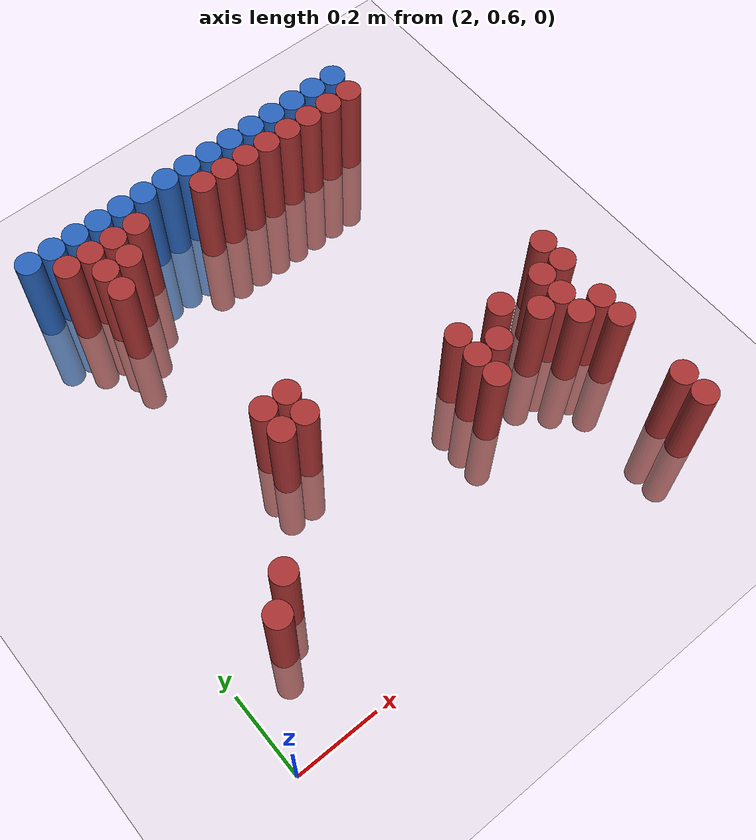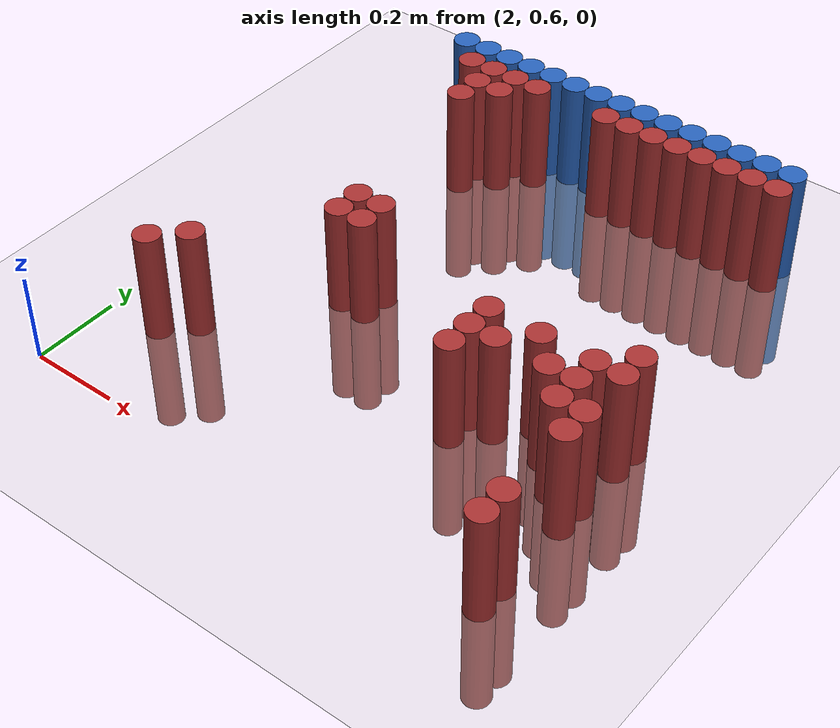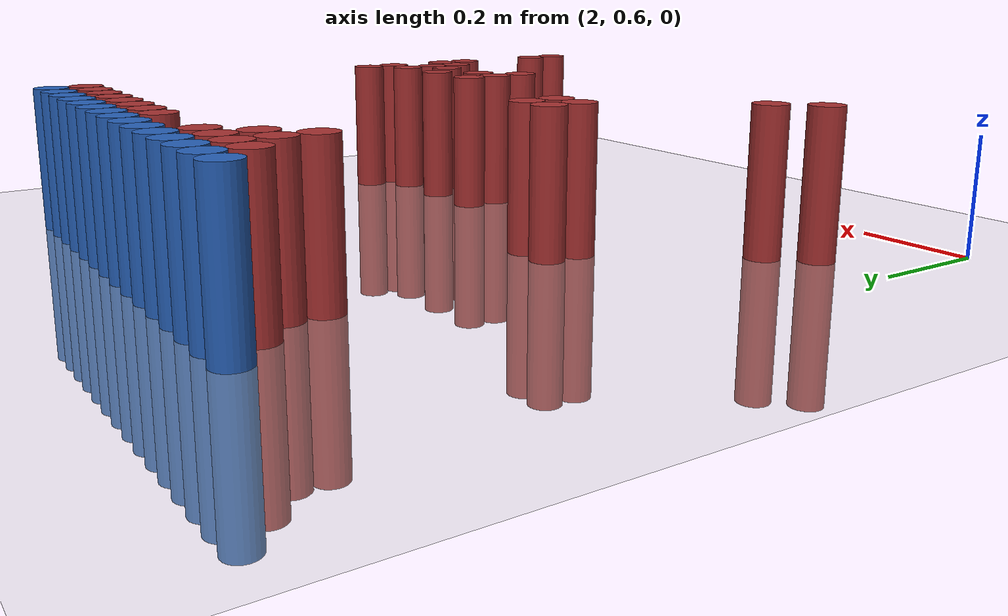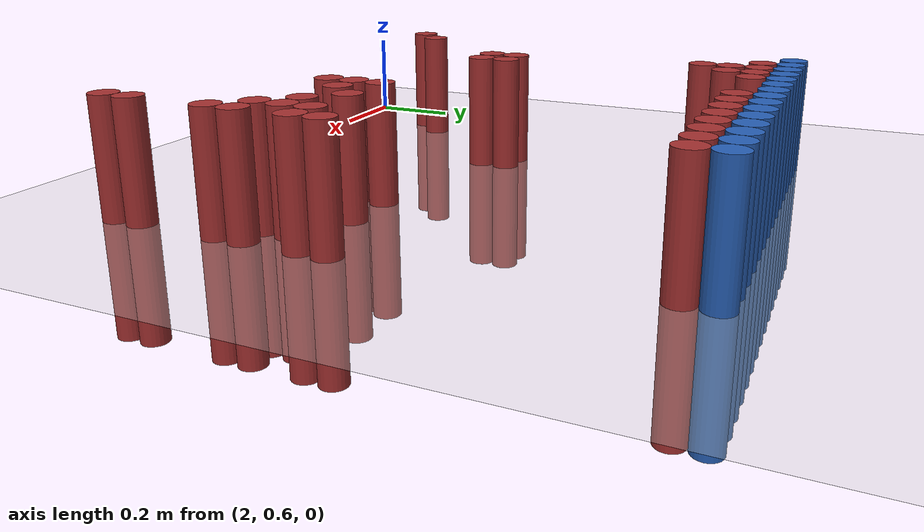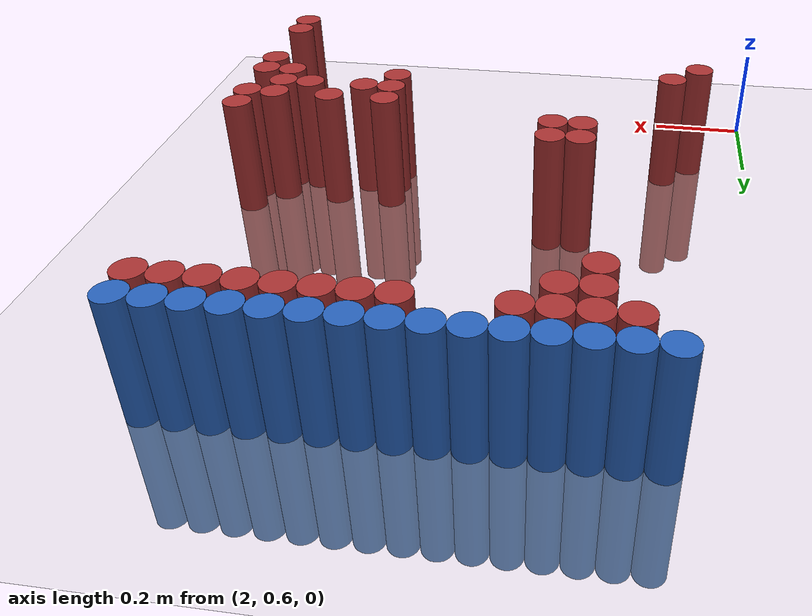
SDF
<sdf version="1.6">
 <world name="default">
  <model name="ground_plane">
   <static>1</static>
   <link name="link">
    <collision name="collision">
     <geometry><plane><normal>0 0 1</normal><size>100 100</size></plane></geometry>
     <surface><friction><ode><mu>100</mu><mu2>50</mu2></ode></friction></surface>
    </collision>
    <visual name="visual">
     <cast_shadows>0</cast_shadows>
     <geometry><plane><normal>0 0 1</normal><size>100 100</size></plane></geometry>
     <material>
      <script><uri>file://media/materials/scripts/gazebo.material</uri><name>Gazebo/Grey</name></script>
     </material>
    </visual>
   </link>
  </model>
  <model name="unit_cylinder_97">
   <static>1</static>
   <pose>2.190000 1.770000 0.000000 0.000000 0.000000 0.000000</pose>
   <link name="link">
    <inertial>
     <mass>1</mass>
     <inertia><ixx>0.145833</ixx><ixy>0</ixy><ixz>0</ixz><iyy>0.145833</iyy><iyz>0</iyz><izz>0.125</izz></inertia>
    </inertial>
    <collision name="collision">
     <geometry><cylinder><radius>0.030000</radius><length>0.5</length></cylinder></geometry>
    </collision>
    <visual name="visual">
     <geometry><cylinder><radius>0.030000</radius><length>0.5</length></cylinder></geometry>
     <material>
      <ambient>0.152000 0.379000 0.720000 1</ambient>
      <diffuse>0.152000 0.379000 0.720000 1</diffuse>
     </material>
     <material>
      <script><name>Gazebo/Grey</name><uri>file://media/materials/scripts/gazebo.material</uri></script>
     </material>
    </visual>
   </link>
  </model>
  <model name="unit_cylinder_98">
   <static>1</static>
   <pose>2.250000 1.770000 0.000000 0.000000 0.000000 0.000000</pose>
   <link name="link">
    <inertial>
     <mass>1</mass>
     <inertia><ixx>0.145833</ixx><ixy>0</ixy><ixz>0</ixz><iyy>0.145833</iyy><iyz>0</iyz><izz>0.125</izz></inertia>
    </inertial>
    <collision name="collision">
     <geometry><cylinder><radius>0.030000</radius><length>0.5</length></cylinder></geometry>
    </collision>
    <visual name="visual">
     <geometry><cylinder><radius>0.030000</radius><length>0.5</length></cylinder></geometry>
     <material>
      <ambient>0.152000 0.379000 0.720000 1</ambient>
      <diffuse>0.152000 0.379000 0.720000 1</diffuse>
     </material>
     <material>
      <script><name>Gazebo/Grey</name><uri>file://media/materials/scripts/gazebo.material</uri></script>
     </material>
    </visual>
   </link>
  </model>
  <model name="unit_cylinder_99">
   <static>1</static>
   <pose>2.310000 1.770000 0.000000 0.000000 0.000000 0.000000</pose>
   <link name="link">
    <inertial>
     <mass>1</mass>
     <inertia><ixx>0.145833</ixx><ixy>0</ixy><ixz>0</ixz><iyy>0.145833</iyy><iyz>0</iyz><izz>0.125</izz></inertia>
    </inertial>
    <collision name="collision">
     <geometry><cylinder><radius>0.030000</radius><length>0.5</length></cylinder></geometry>
    </collision>
    <visual name="visual">
     <geometry><cylinder><radius>0.030000</radius><length>0.5</length></cylinder></geometry>
     <material>
      <ambient>0.152000 0.379000 0.720000 1</ambient>
      <diffuse>0.152000 0.379000 0.720000 1</diffuse>
     </material>
     <material>
      <script><name>Gazebo/Grey</name><uri>file://media/materials/scripts/gazebo.material</uri></script>
     </material>
    </visual>
   </link>
  </model>
  <model name="unit_cylinder_100">
   <static>1</static>
   <pose>2.370000 1.770000 0.000000 0.000000 0.000000 0.000000</pose>
   <link name="link">
    <inertial>
     <mass>1</mass>
     <inertia><ixx>0.145833</ixx><ixy>0</ixy><ixz>0</ixz><iyy>0.145833</iyy><iyz>0</iyz><izz>0.125</izz></inertia>
    </inertial>
    <collision name="collision">
     <geometry><cylinder><radius>0.030000</radius><length>0.5</length></cylinder></geometry>
    </collision>
    <visual name="visual">
     <geometry><cylinder><radius>0.030000</radius><length>0.5</length></cylinder></geometry>
     <material>
      <ambient>0.152000 0.379000 0.720000 1</ambient>
      <diffuse>0.152000 0.379000 0.720000 1</diffuse>
     </material>
     <material>
      <script><name>Gazebo/Grey</name><uri>file://media/materials/scripts/gazebo.material</uri></script>
     </material>
    </visual>
   </link>
  </model>
  <model name="unit_cylinder_101">
   <static>1</static>
   <pose>2.430000 1.770000 0.000000 0.000000 0.000000 0.000000</pose>
   <link name="link">
    <inertial>
     <mass>1</mass>
     <inertia><ixx>0.145833</ixx><ixy>0</ixy><ixz>0</ixz><iyy>0.145833</iyy><iyz>0</iyz><izz>0.125</izz></inertia>
    </inertial>
    <collision name="collision">
     <geometry><cylinder><radius>0.030000</radius><length>0.5</length></cylinder></geometry>
    </collision>
    <visual name="visual">
     <geometry><cylinder><radius>0.030000</radius><length>0.5</length></cylinder></geometry>
     <material>
      <ambient>0.152000 0.379000 0.720000 1</ambient>
      <diffuse>0.152000 0.379000 0.720000 1</diffuse>
     </material>
     <material>
      <script><name>Gazebo/Grey</name><uri>file://media/materials/scripts/gazebo.material</uri></script>
     </material>
    </visual>
   </link>
  </model>
  <model name="unit_cylinder_102">
   <static>1</static>
   <pose>2.490000 1.770000 0.000000 0.000000 0.000000 0.000000</pose>
   <link name="link">
    <inertial>
     <mass>1</mass>
     <inertia><ixx>0.145833</ixx><ixy>0</ixy><ixz>0</ixz><iyy>0.145833</iyy><iyz>0</iyz><izz>0.125</izz></inertia>
    </inertial>
    <collision name="collision">
     <geometry><cylinder><radius>0.030000</radius><length>0.5</length></cylinder></geometry>
    </collision>
    <visual name="visual">
     <geometry><cylinder><radius>0.030000</radius><length>0.5</length></cylinder></geometry>
     <material>
      <ambient>0.152000 0.379000 0.720000 1</ambient>
      <diffuse>0.152000 0.379000 0.720000 1</diffuse>
     </material>
     <material>
      <script><name>Gazebo/Grey</name><uri>file://media/materials/scripts/gazebo.material</uri></script>
     </material>
    </visual>
   </link>
  </model>
  <model name="unit_cylinder_103">
   <static>1</static>
   <pose>2.550000 1.770000 0.000000 0.000000 0.000000 0.000000</pose>
   <link name="link">
    <inertial>
     <mass>1</mass>
     <inertia><ixx>0.145833</ixx><ixy>0</ixy><ixz>0</ixz><iyy>0.145833</iyy><iyz>0</iyz><izz>0.125</izz></inertia>
    </inertial>
    <collision name="collision">
     <geometry><cylinder><radius>0.030000</radius><length>0.5</length></cylinder></geometry>
    </collision>
    <visual name="visual">
     <geometry><cylinder><radius>0.030000</radius><length>0.5</length></cylinder></geometry>
     <material>
      <ambient>0.152000 0.379000 0.720000 1</ambient>
      <diffuse>0.152000 0.379000 0.720000 1</diffuse>
     </material>
     <material>
      <script><name>Gazebo/Grey</name><uri>file://media/materials/scripts/gazebo.material</uri></script>
     </material>
    </visual>
   </link>
  </model>
  <model name="unit_cylinder_104">
   <static>1</static>
   <pose>2.610000 1.770000 0.000000 0.000000 0.000000 0.000000</pose>
   <link name="link">
    <inertial>
     <mass>1</mass>
     <inertia><ixx>0.145833</ixx><ixy>0</ixy><ixz>0</ixz><iyy>0.145833</iyy><iyz>0</iyz><izz>0.125</izz></inertia>
    </inertial>
    <collision name="collision">
     <geometry><cylinder><radius>0.030000</radius><length>0.5</length></cylinder></geometry>
    </collision>
    <visual name="visual">
     <geometry><cylinder><radius>0.030000</radius><length>0.5</length></cylinder></geometry>
     <material>
      <ambient>0.152000 0.379000 0.720000 1</ambient>
      <diffuse>0.152000 0.379000 0.720000 1</diffuse>
     </material>
     <material>
      <script><name>Gazebo/Grey</name><uri>file://media/materials/scripts/gazebo.material</uri></script>
     </material>
    </visual>
   </link>
  </model>
  <model name="unit_cylinder_105">
   <static>1</static>
   <pose>2.670000 1.770000 0.000000 0.000000 0.000000 0.000000</pose>
   <link name="link">
    <inertial>
     <mass>1</mass>
     <inertia><ixx>0.145833</ixx><ixy>0</ixy><ixz>0</ixz><iyy>0.145833</iyy><iyz>0</iyz><izz>0.125</izz></inertia>
    </inertial>
    <collision name="collision">
     <geometry><cylinder><radius>0.030000</radius><length>0.5</length></cylinder></geometry>
    </collision>
    <visual name="visual">
     <geometry><cylinder><radius>0.030000</radius><length>0.5</length></cylinder></geometry>
     <material>
      <ambient>0.152000 0.379000 0.720000 1</ambient>
      <diffuse>0.152000 0.379000 0.720000 1</diffuse>
     </material>
     <material>
      <script><name>Gazebo/Grey</name><uri>file://media/materials/scripts/gazebo.material</uri></script>
     </material>
    </visual>
   </link>
  </model>
  <model name="unit_cylinder_106">
   <static>1</static>
   <pose>2.730000 1.770000 0.000000 0.000000 0.000000 0.000000</pose>
   <link name="link">
    <inertial>
     <mass>1</mass>
     <inertia><ixx>0.145833</ixx><ixy>0</ixy><ixz>0</ixz><iyy>0.145833</iyy><iyz>0</iyz><izz>0.125</izz></inertia>
    </inertial>
    <collision name="collision">
     <geometry><cylinder><radius>0.030000</radius><length>0.5</length></cylinder></geometry>
    </collision>
    <visual name="visual">
     <geometry><cylinder><radius>0.030000</radius><length>0.5</length></cylinder></geometry>
     <material>
      <ambient>0.152000 0.379000 0.720000 1</ambient>
      <diffuse>0.152000 0.379000 0.720000 1</diffuse>
     </material>
     <material>
      <script><name>Gazebo/Grey</name><uri>file://media/materials/scripts/gazebo.material</uri></script>
     </material>
    </visual>
   </link>
  </model>
  <model name="unit_cylinder_107">
   <static>1</static>
   <pose>2.790000 1.770000 0.000000 0.000000 0.000000 0.000000</pose>
   <link name="link">
    <inertial>
     <mass>1</mass>
     <inertia><ixx>0.145833</ixx><ixy>0</ixy><ixz>0</ixz><iyy>0.145833</iyy><iyz>0</iyz><izz>0.125</izz></inertia>
    </inertial>
    <collision name="collision">
     <geometry><cylinder><radius>0.030000</radius><length>0.5</length></cylinder></geometry>
    </collision>
    <visual name="visual">
     <geometry><cylinder><radius>0.030000</radius><length>0.5</length></cylinder></geometry>
     <material>
      <ambient>0.152000 0.379000 0.720000 1</ambient>
      <diffuse>0.152000 0.379000 0.720000 1</diffuse>
     </material>
     <material>
      <script><name>Gazebo/Grey</name><uri>file://media/materials/scripts/gazebo.material</uri></script>
     </material>
    </visual>
   </link>
  </model>
  <model name="unit_cylinder_108">
   <static>1</static>
   <pose>2.850000 1.770000 0.000000 0.000000 0.000000 0.000000</pose>
   <link name="link">
    <inertial>
     <mass>1</mass>
     <inertia><ixx>0.145833</ixx><ixy>0</ixy><ixz>0</ixz><iyy>0.145833</iyy><iyz>0</iyz><izz>0.125</izz></inertia>
    </inertial>
    <collision name="collision">
     <geometry><cylinder><radius>0.030000</radius><length>0.5</length></cylinder></geometry>
    </collision>
    <visual name="visual">
     <geometry><cylinder><radius>0.030000</radius><length>0.5</length></cylinder></geometry>
     <material>
      <ambient>0.152000 0.379000 0.720000 1</ambient>
      <diffuse>0.152000 0.379000 0.720000 1</diffuse>
     </material>
     <material>
      <script><name>Gazebo/Grey</name><uri>file://media/materials/scripts/gazebo.material</uri></script>
     </material>
    </visual>
   </link>
  </model>
  <model name="unit_cylinder_109">
   <static>1</static>
   <pose>2.910000 1.770000 0.000000 0.000000 0.000000 0.000000</pose>
   <link name="link">
    <inertial>
     <mass>1</mass>
     <inertia><ixx>0.145833</ixx><ixy>0</ixy><ixz>0</ixz><iyy>0.145833</iyy><iyz>0</iyz><izz>0.125</izz></inertia>
    </inertial>
    <collision name="collision">
     <geometry><cylinder><radius>0.030000</radius><length>0.5</length></cylinder></geometry>
    </collision>
    <visual name="visual">
     <geometry><cylinder><radius>0.030000</radius><length>0.5</length></cylinder></geometry>
     <material>
      <ambient>0.152000 0.379000 0.720000 1</ambient>
      <diffuse>0.152000 0.379000 0.720000 1</diffuse>
     </material>
     <material>
      <script><name>Gazebo/Grey</name><uri>file://media/materials/scripts/gazebo.material</uri></script>
     </material>
    </visual>
   </link>
  </model>
  <model name="unit_cylinder_110">
   <static>1</static>
   <pose>2.970000 1.770000 0.000000 0.000000 0.000000 0.000000</pose>
   <link name="link">
    <inertial>
     <mass>1</mass>
     <inertia><ixx>0.145833</ixx><ixy>0</ixy><ixz>0</ixz><iyy>0.145833</iyy><iyz>0</iyz><izz>0.125</izz></inertia>
    </inertial>
    <collision name="collision">
     <geometry><cylinder><radius>0.030000</radius><length>0.5</length></cylinder></geometry>
    </collision>
    <visual name="visual">
     <geometry><cylinder><radius>0.030000</radius><length>0.5</length></cylinder></geometry>
     <material>
      <ambient>0.152000 0.379000 0.720000 1</ambient>
      <diffuse>0.152000 0.379000 0.720000 1</diffuse>
     </material>
     <material>
      <script><name>Gazebo/Grey</name><uri>file://media/materials/scripts/gazebo.material</uri></script>
     </material>
    </visual>
   </link>
  </model>
  <model name="unit_cylinder_111">
   <static>1</static>
   <pose>3.030000 1.770000 0.000000 0.000000 0.000000 0.000000</pose>
   <link name="link">
    <inertial>
     <mass>1</mass>
     <inertia><ixx>0.145833</ixx><ixy>0</ixy><ixz>0</ixz><iyy>0.145833</iyy><iyz>0</iyz><izz>0.125</izz></inertia>
    </inertial>
    <collision name="collision">
     <geometry><cylinder><radius>0.030000</radius><length>0.5</length></cylinder></geometry>
    </collision>
    <visual name="visual">
     <geometry><cylinder><radius>0.030000</radius><length>0.5</length></cylinder></geometry>
     <material>
      <ambient>0.152000 0.379000 0.720000 1</ambient>
      <diffuse>0.152000 0.379000 0.720000 1</diffuse>
     </material>
     <material>
      <script><name>Gazebo/Grey</name><uri>file://media/materials/scripts/gazebo.material</uri></script>
     </material>
    </visual>
   </link>
  </model>
  <model name="unit_cylinder_125">
   <static>1</static>
   <pose>2.250000 1.710000 0.000000 0.000000 0.000000 0.000000</pose>
   <link name="link">
    <inertial>
     <mass>1</mass>
     <inertia><ixx>0.145833</ixx><ixy>0</ixy><ixz>0</ixz><iyy>0.145833</iyy><iyz>0</iyz><izz>0.125</izz></inertia>
    </inertial>
    <collision name="collision">
     <geometry><cylinder><radius>0.030000</radius><length>0.5</length></cylinder></geometry>
    </collision>
    <visual name="visual">
     <geometry><cylinder><radius>0.030000</radius><length>0.5</length></cylinder></geometry>
     <material>
      <ambient>0.648000 0.192000 0.192000 1</ambient>
      <diffuse>0.648000 0.192000 0.192000 1</diffuse>
     </material>
     <material>
      <script><name>Gazebo/Grey</name><uri>file://media/materials/scripts/gazebo.material</uri></script>
     </material>
    </visual>
   </link>
  </model>
  <model name="unit_cylinder_126">
   <static>1</static>
   <pose>2.310000 1.710000 0.000000 0.000000 0.000000 0.000000</pose>
   <link name="link">
    <inertial>
     <mass>1</mass>
     <inertia><ixx>0.145833</ixx><ixy>0</ixy><ixz>0</ixz><iyy>0.145833</iyy><iyz>0</iyz><izz>0.125</izz></inertia>
    </inertial>
    <collision name="collision">
     <geometry><cylinder><radius>0.030000</radius><length>0.5</length></cylinder></geometry>
    </collision>
    <visual name="visual">
     <geometry><cylinder><radius>0.030000</radius><length>0.5</length></cylinder></geometry>
     <material>
      <ambient>0.648000 0.192000 0.192000 1</ambient>
      <diffuse>0.648000 0.192000 0.192000 1</diffuse>
     </material>
     <material>
      <script><name>Gazebo/Grey</name><uri>file://media/materials/scripts/gazebo.material</uri></script>
     </material>
    </visual>
   </link>
  </model>
  <model name="unit_cylinder_127">
   <static>1</static>
   <pose>2.370000 1.710000 0.000000 0.000000 0.000000 0.000000</pose>
   <link name="link">
    <inertial>
     <mass>1</mass>
     <inertia><ixx>0.145833</ixx><ixy>0</ixy><ixz>0</ixz><iyy>0.145833</iyy><iyz>0</iyz><izz>0.125</izz></inertia>
    </inertial>
    <collision name="collision">
     <geometry><cylinder><radius>0.030000</radius><length>0.5</length></cylinder></geometry>
    </collision>
    <visual name="visual">
     <geometry><cylinder><radius>0.030000</radius><length>0.5</length></cylinder></geometry>
     <material>
      <ambient>0.648000 0.192000 0.192000 1</ambient>
      <diffuse>0.648000 0.192000 0.192000 1</diffuse>
     </material>
     <material>
      <script><name>Gazebo/Grey</name><uri>file://media/materials/scripts/gazebo.material</uri></script>
     </material>
    </visual>
   </link>
  </model>
  <model name="unit_cylinder_128">
   <static>1</static>
   <pose>2.430000 1.710000 0.000000 0.000000 0.000000 0.000000</pose>
   <link name="link">
    <inertial>
     <mass>1</mass>
     <inertia><ixx>0.145833</ixx><ixy>0</ixy><ixz>0</ixz><iyy>0.145833</iyy><iyz>0</iyz><izz>0.125</izz></inertia>
    </inertial>
    <collision name="collision">
     <geometry><cylinder><radius>0.030000</radius><length>0.5</length></cylinder></geometry>
    </collision>
    <visual name="visual">
     <geometry><cylinder><radius>0.030000</radius><length>0.5</length></cylinder></geometry>
     <material>
      <ambient>0.648000 0.192000 0.192000 1</ambient>
      <diffuse>0.648000 0.192000 0.192000 1</diffuse>
     </material>
     <material>
      <script><name>Gazebo/Grey</name><uri>file://media/materials/scripts/gazebo.material</uri></script>
     </material>
    </visual>
   </link>
  </model>
  <model name="unit_cylinder_129">
   <static>1</static>
   <pose>2.610000 1.710000 0.000000 0.000000 0.000000 0.000000</pose>
   <link name="link">
    <inertial>
     <mass>1</mass>
     <inertia><ixx>0.145833</ixx><ixy>0</ixy><ixz>0</ixz><iyy>0.145833</iyy><iyz>0</iyz><izz>0.125</izz></inertia>
    </inertial>
    <collision name="collision">
     <geometry><cylinder><radius>0.030000</radius><length>0.5</length></cylinder></geometry>
    </collision>
    <visual name="visual">
     <geometry><cylinder><radius>0.030000</radius><length>0.5</length></cylinder></geometry>
     <material>
      <ambient>0.648000 0.192000 0.192000 1</ambient>
      <diffuse>0.648000 0.192000 0.192000 1</diffuse>
     </material>
     <material>
      <script><name>Gazebo/Grey</name><uri>file://media/materials/scripts/gazebo.material</uri></script>
     </material>
    </visual>
   </link>
  </model>
  <model name="unit_cylinder_130">
   <static>1</static>
   <pose>2.670000 1.710000 0.000000 0.000000 0.000000 0.000000</pose>
   <link name="link">
    <inertial>
     <mass>1</mass>
     <inertia><ixx>0.145833</ixx><ixy>0</ixy><ixz>0</ixz><iyy>0.145833</iyy><iyz>0</iyz><izz>0.125</izz></inertia>
    </inertial>
    <collision name="collision">
     <geometry><cylinder><radius>0.030000</radius><length>0.5</length></cylinder></geometry>
    </collision>
    <visual name="visual">
     <geometry><cylinder><radius>0.030000</radius><length>0.5</length></cylinder></geometry>
     <material>
      <ambient>0.648000 0.192000 0.192000 1</ambient>
      <diffuse>0.648000 0.192000 0.192000 1</diffuse>
     </material>
     <material>
      <script><name>Gazebo/Grey</name><uri>file://media/materials/scripts/gazebo.material</uri></script>
     </material>
    </visual>
   </link>
  </model>
  <model name="unit_cylinder_131">
   <static>1</static>
   <pose>2.730000 1.710000 0.000000 0.000000 0.000000 0.000000</pose>
   <link name="link">
    <inertial>
     <mass>1</mass>
     <inertia><ixx>0.145833</ixx><ixy>0</ixy><ixz>0</ixz><iyy>0.145833</iyy><iyz>0</iyz><izz>0.125</izz></inertia>
    </inertial>
    <collision name="collision">
     <geometry><cylinder><radius>0.030000</radius><length>0.5</length></cylinder></geometry>
    </collision>
    <visual name="visual">
     <geometry><cylinder><radius>0.030000</radius><length>0.5</length></cylinder></geometry>
     <material>
      <ambient>0.648000 0.192000 0.192000 1</ambient>
      <diffuse>0.648000 0.192000 0.192000 1</diffuse>
     </material>
     <material>
      <script><name>Gazebo/Grey</name><uri>file://media/materials/scripts/gazebo.material</uri></script>
     </material>
    </visual>
   </link>
  </model>
  <model name="unit_cylinder_132">
   <static>1</static>
   <pose>2.790000 1.710000 0.000000 0.000000 0.000000 0.000000</pose>
   <link name="link">
    <inertial>
     <mass>1</mass>
     <inertia><ixx>0.145833</ixx><ixy>0</ixy><ixz>0</ixz><iyy>0.145833</iyy><iyz>0</iyz><izz>0.125</izz></inertia>
    </inertial>
    <collision name="collision">
     <geometry><cylinder><radius>0.030000</radius><length>0.5</length></cylinder></geometry>
    </collision>
    <visual name="visual">
     <geometry><cylinder><radius>0.030000</radius><length>0.5</length></cylinder></geometry>
     <material>
      <ambient>0.648000 0.192000 0.192000 1</ambient>
      <diffuse>0.648000 0.192000 0.192000 1</diffuse>
     </material>
     <material>
      <script><name>Gazebo/Grey</name><uri>file://media/materials/scripts/gazebo.material</uri></script>
     </material>
    </visual>
   </link>
  </model>
  <model name="unit_cylinder_133">
   <static>1</static>
   <pose>2.850000 1.710000 0.000000 0.000000 0.000000 0.000000</pose>
   <link name="link">
    <inertial>
     <mass>1</mass>
     <inertia><ixx>0.145833</ixx><ixy>0</ixy><ixz>0</ixz><iyy>0.145833</iyy><iyz>0</iyz><izz>0.125</izz></inertia>
    </inertial>
    <collision name="collision">
     <geometry><cylinder><radius>0.030000</radius><length>0.5</length></cylinder></geometry>
    </collision>
    <visual name="visual">
     <geometry><cylinder><radius>0.030000</radius><length>0.5</length></cylinder></geometry>
     <material>
      <ambient>0.648000 0.192000 0.192000 1</ambient>
      <diffuse>0.648000 0.192000 0.192000 1</diffuse>
     </material>
     <material>
      <script><name>Gazebo/Grey</name><uri>file://media/materials/scripts/gazebo.material</uri></script>
     </material>
    </visual>
   </link>
  </model>
  <model name="unit_cylinder_134">
   <static>1</static>
   <pose>2.910000 1.710000 0.000000 0.000000 0.000000 0.000000</pose>
   <link name="link">
    <inertial>
     <mass>1</mass>
     <inertia><ixx>0.145833</ixx><ixy>0</ixy><ixz>0</ixz><iyy>0.145833</iyy><iyz>0</iyz><izz>0.125</izz></inertia>
    </inertial>
    <collision name="collision">
     <geometry><cylinder><radius>0.030000</radius><length>0.5</length></cylinder></geometry>
    </collision>
    <visual name="visual">
     <geometry><cylinder><radius>0.030000</radius><length>0.5</length></cylinder></geometry>
     <material>
      <ambient>0.648000 0.192000 0.192000 1</ambient>
      <diffuse>0.648000 0.192000 0.192000 1</diffuse>
     </material>
     <material>
      <script><name>Gazebo/Grey</name><uri>file://media/materials/scripts/gazebo.material</uri></script>
     </material>
    </visual>
   </link>
  </model>
  <model name="unit_cylinder_135">
   <static>1</static>
   <pose>2.970000 1.710000 0.000000 0.000000 0.000000 0.000000</pose>
   <link name="link">
    <inertial>
     <mass>1</mass>
     <inertia><ixx>0.145833</ixx><ixy>0</ixy><ixz>0</ixz><iyy>0.145833</iyy><iyz>0</iyz><izz>0.125</izz></inertia>
    </inertial>
    <collision name="collision">
     <geometry><cylinder><radius>0.030000</radius><length>0.5</length></cylinder></geometry>
    </collision>
    <visual name="visual">
     <geometry><cylinder><radius>0.030000</radius><length>0.5</length></cylinder></geometry>
     <material>
      <ambient>0.648000 0.192000 0.192000 1</ambient>
      <diffuse>0.648000 0.192000 0.192000 1</diffuse>
     </material>
     <material>
      <script><name>Gazebo/Grey</name><uri>file://media/materials/scripts/gazebo.material</uri></script>
     </material>
    </visual>
   </link>
  </model>
  <model name="unit_cylinder_136">
   <static>1</static>
   <pose>3.030000 1.710000 0.000000 0.000000 0.000000 0.000000</pose>
   <link name="link">
    <inertial>
     <mass>1</mass>
     <inertia><ixx>0.145833</ixx><ixy>0</ixy><ixz>0</ixz><iyy>0.145833</iyy><iyz>0</iyz><izz>0.125</izz></inertia>
    </inertial>
    <collision name="collision">
     <geometry><cylinder><radius>0.030000</radius><length>0.5</length></cylinder></geometry>
    </collision>
    <visual name="visual">
     <geometry><cylinder><radius>0.030000</radius><length>0.5</length></cylinder></geometry>
     <material>
      <ambient>0.648000 0.192000 0.192000 1</ambient>
      <diffuse>0.648000 0.192000 0.192000 1</diffuse>
     </material>
     <material>
      <script><name>Gazebo/Grey</name><uri>file://media/materials/scripts/gazebo.material</uri></script>
     </material>
    </visual>
   </link>
  </model>
  <model name="unit_cylinder_140">
   <static>1</static>
   <pose>2.310000 1.650000 0.000000 0.000000 0.000000 0.000000</pose>
   <link name="link">
    <inertial>
     <mass>1</mass>
     <inertia><ixx>0.145833</ixx><ixy>0</ixy><ixz>0</ixz><iyy>0.145833</iyy><iyz>0</iyz><izz>0.125</izz></inertia>
    </inertial>
    <collision name="collision">
     <geometry><cylinder><radius>0.030000</radius><length>0.5</length></cylinder></geometry>
    </collision>
    <visual name="visual">
     <geometry><cylinder><radius>0.030000</radius><length>0.5</length></cylinder></geometry>
     <material>
      <ambient>0.648000 0.192000 0.192000 1</ambient>
      <diffuse>0.648000 0.192000 0.192000 1</diffuse>
     </material>
     <material>
      <script><name>Gazebo/Grey</name><uri>file://media/materials/scripts/gazebo.material</uri></script>
     </material>
    </visual>
   </link>
  </model>
  <model name="unit_cylinder_141">
   <static>1</static>
   <pose>2.370000 1.650000 0.000000 0.000000 0.000000 0.000000</pose>
   <link name="link">
    <inertial>
     <mass>1</mass>
     <inertia><ixx>0.145833</ixx><ixy>0</ixy><ixz>0</ixz><iyy>0.145833</iyy><iyz>0</iyz><izz>0.125</izz></inertia>
    </inertial>
    <collision name="collision">
     <geometry><cylinder><radius>0.030000</radius><length>0.5</length></cylinder></geometry>
    </collision>
    <visual name="visual">
     <geometry><cylinder><radius>0.030000</radius><length>0.5</length></cylinder></geometry>
     <material>
      <ambient>0.648000 0.192000 0.192000 1</ambient>
      <diffuse>0.648000 0.192000 0.192000 1</diffuse>
     </material>
     <material>
      <script><name>Gazebo/Grey</name><uri>file://media/materials/scripts/gazebo.material</uri></script>
     </material>
    </visual>
   </link>
  </model>
  <model name="unit_cylinder_142">
   <static>1</static>
   <pose>2.310000 1.590000 0.000000 0.000000 0.000000 0.000000</pose>
   <link name="link">
    <inertial>
     <mass>1</mass>
     <inertia><ixx>0.145833</ixx><ixy>0</ixy><ixz>0</ixz><iyy>0.145833</iyy><iyz>0</iyz><izz>0.125</izz></inertia>
    </inertial>
    <collision name="collision">
     <geometry><cylinder><radius>0.030000</radius><length>0.5</length></cylinder></geometry>
    </collision>
    <visual name="visual">
     <geometry><cylinder><radius>0.030000</radius><length>0.5</length></cylinder></geometry>
     <material>
      <ambient>0.648000 0.192000 0.192000 1</ambient>
      <diffuse>0.648000 0.192000 0.192000 1</diffuse>
     </material>
     <material>
      <script><name>Gazebo/Grey</name><uri>file://media/materials/scripts/gazebo.material</uri></script>
     </material>
    </visual>
   </link>
  </model>
  <model name="unit_cylinder_155">
   <static>1</static>
   <pose>2.370000 1.170000 0.000000 0.000000 0.000000 0.000000</pose>
   <link name="link">
    <inertial>
     <mass>1</mass>
     <inertia><ixx>0.145833</ixx><ixy>0</ixy><ixz>0</ixz><iyy>0.145833</iyy><iyz>0</iyz><izz>0.125</izz></inertia>
    </inertial>
    <collision name="collision">
     <geometry><cylinder><radius>0.030000</radius><length>0.5</length></cylinder></geometry>
    </collision>
    <visual name="visual">
     <geometry><cylinder><radius>0.030000</radius><length>0.5</length></cylinder></geometry>
     <material>
      <ambient>0.648000 0.192000 0.192000 1</ambient>
      <diffuse>0.648000 0.192000 0.192000 1</diffuse>
     </material>
     <material>
      <script><name>Gazebo/Grey</name><uri>file://media/materials/scripts/gazebo.material</uri></script>
     </material>
    </visual>
   </link>
  </model>
  <model name="unit_cylinder_156">
   <static>1</static>
   <pose>2.430000 1.170000 0.000000 0.000000 0.000000 0.000000</pose>
   <link name="link">
    <inertial>
     <mass>1</mass>
     <inertia><ixx>0.145833</ixx><ixy>0</ixy><ixz>0</ixz><iyy>0.145833</iyy><iyz>0</iyz><izz>0.125</izz></inertia>
    </inertial>
    <collision name="collision">
     <geometry><cylinder><radius>0.030000</radius><length>0.5</length></cylinder></geometry>
    </collision>
    <visual name="visual">
     <geometry><cylinder><radius>0.030000</radius><length>0.5</length></cylinder></geometry>
     <material>
      <ambient>0.648000 0.192000 0.192000 1</ambient>
      <diffuse>0.648000 0.192000 0.192000 1</diffuse>
     </material>
     <material>
      <script><name>Gazebo/Grey</name><uri>file://media/materials/scripts/gazebo.material</uri></script>
     </material>
    </visual>
   </link>
  </model>
  <model name="unit_cylinder_157">
   <static>1</static>
   <pose>2.370000 1.110000 0.000000 0.000000 0.000000 0.000000</pose>
   <link name="link">
    <inertial>
     <mass>1</mass>
     <inertia><ixx>0.145833</ixx><ixy>0</ixy><ixz>0</ixz><iyy>0.145833</iyy><iyz>0</iyz><izz>0.125</izz></inertia>
    </inertial>
    <collision name="collision">
     <geometry><cylinder><radius>0.030000</radius><length>0.5</length></cylinder></geometry>
    </collision>
    <visual name="visual">
     <geometry><cylinder><radius>0.030000</radius><length>0.5</length></cylinder></geometry>
     <material>
      <ambient>0.648000 0.192000 0.192000 1</ambient>
      <diffuse>0.648000 0.192000 0.192000 1</diffuse>
     </material>
     <material>
      <script><name>Gazebo/Grey</name><uri>file://media/materials/scripts/gazebo.material</uri></script>
     </material>
    </visual>
   </link>
  </model>
  <model name="unit_cylinder_158">
   <static>1</static>
   <pose>2.430000 1.110000 0.000000 0.000000 0.000000 0.000000</pose>
   <link name="link">
    <inertial>
     <mass>1</mass>
     <inertia><ixx>0.145833</ixx><ixy>0</ixy><ixz>0</ixz><iyy>0.145833</iyy><iyz>0</iyz><izz>0.125</izz></inertia>
    </inertial>
    <collision name="collision">
     <geometry><cylinder><radius>0.030000</radius><length>0.5</length></cylinder></geometry>
    </collision>
    <visual name="visual">
     <geometry><cylinder><radius>0.030000</radius><length>0.5</length></cylinder></geometry>
     <material>
      <ambient>0.648000 0.192000 0.192000 1</ambient>
      <diffuse>0.648000 0.192000 0.192000 1</diffuse>
     </material>
     <material>
      <script><name>Gazebo/Grey</name><uri>file://media/materials/scripts/gazebo.material</uri></script>
     </material>
    </visual>
   </link>
  </model>
  <model name="unit_cylinder_159">
   <static>1</static>
   <pose>3.090000 1.110000 0.000000 0.000000 0.000000 0.000000</pose>
   <link name="link">
    <inertial>
     <mass>1</mass>
     <inertia><ixx>0.145833</ixx><ixy>0</ixy><ixz>0</ixz><iyy>0.145833</iyy><iyz>0</iyz><izz>0.125</izz></inertia>
    </inertial>
    <collision name="collision">
     <geometry><cylinder><radius>0.030000</radius><length>0.5</length></cylinder></geometry>
    </collision>
    <visual name="visual">
     <geometry><cylinder><radius>0.030000</radius><length>0.5</length></cylinder></geometry>
     <material>
      <ambient>0.648000 0.192000 0.192000 1</ambient>
      <diffuse>0.648000 0.192000 0.192000 1</diffuse>
     </material>
     <material>
      <script><name>Gazebo/Grey</name><uri>file://media/materials/scripts/gazebo.material</uri></script>
     </material>
    </visual>
   </link>
  </model>
  <model name="unit_cylinder_160">
   <static>1</static>
   <pose>2.790000 1.050000 0.000000 0.000000 0.000000 0.000000</pose>
   <link name="link">
    <inertial>
     <mass>1</mass>
     <inertia><ixx>0.145833</ixx><ixy>0</ixy><ixz>0</ixz><iyy>0.145833</iyy><iyz>0</iyz><izz>0.125</izz></inertia>
    </inertial>
    <collision name="collision">
     <geometry><cylinder><radius>0.030000</radius><length>0.5</length></cylinder></geometry>
    </collision>
    <visual name="visual">
     <geometry><cylinder><radius>0.030000</radius><length>0.5</length></cylinder></geometry>
     <material>
      <ambient>0.648000 0.192000 0.192000 1</ambient>
      <diffuse>0.648000 0.192000 0.192000 1</diffuse>
     </material>
     <material>
      <script><name>Gazebo/Grey</name><uri>file://media/materials/scripts/gazebo.material</uri></script>
     </material>
    </visual>
   </link>
  </model>
  <model name="unit_cylinder_161">
   <static>1</static>
   <pose>2.910000 1.050000 0.000000 0.000000 0.000000 0.000000</pose>
   <link name="link">
    <inertial>
     <mass>1</mass>
     <inertia><ixx>0.145833</ixx><ixy>0</ixy><ixz>0</ixz><iyy>0.145833</iyy><iyz>0</iyz><izz>0.125</izz></inertia>
    </inertial>
    <collision name="collision">
     <geometry><cylinder><radius>0.030000</radius><length>0.5</length></cylinder></geometry>
    </collision>
    <visual name="visual">
     <geometry><cylinder><radius>0.030000</radius><length>0.5</length></cylinder></geometry>
     <material>
      <ambient>0.648000 0.192000 0.192000 1</ambient>
      <diffuse>0.648000 0.192000 0.192000 1</diffuse>
     </material>
     <material>
      <script><name>Gazebo/Grey</name><uri>file://media/materials/scripts/gazebo.material</uri></script>
     </material>
    </visual>
   </link>
  </model>
  <model name="unit_cylinder_162">
   <static>1</static>
   <pose>3.030000 1.050000 0.000000 0.000000 0.000000 0.000000</pose>
   <link name="link">
    <inertial>
     <mass>1</mass>
     <inertia><ixx>0.145833</ixx><ixy>0</ixy><ixz>0</ixz><iyy>0.145833</iyy><iyz>0</iyz><izz>0.125</izz></inertia>
    </inertial>
    <collision name="collision">
     <geometry><cylinder><radius>0.030000</radius><length>0.5</length></cylinder></geometry>
    </collision>
    <visual name="visual">
     <geometry><cylinder><radius>0.030000</radius><length>0.5</length></cylinder></geometry>
     <material>
      <ambient>0.648000 0.192000 0.192000 1</ambient>
      <diffuse>0.648000 0.192000 0.192000 1</diffuse>
     </material>
     <material>
      <script><name>Gazebo/Grey</name><uri>file://media/materials/scripts/gazebo.material</uri></script>
     </material>
    </visual>
   </link>
  </model>
  <model name="unit_cylinder_163">
   <static>1</static>
   <pose>3.090000 1.050000 0.000000 0.000000 0.000000 0.000000</pose>
   <link name="link">
    <inertial>
     <mass>1</mass>
     <inertia><ixx>0.145833</ixx><ixy>0</ixy><ixz>0</ixz><iyy>0.145833</iyy><iyz>0</iyz><izz>0.125</izz></inertia>
    </inertial>
    <collision name="collision">
     <geometry><cylinder><radius>0.030000</radius><length>0.5</length></cylinder></geometry>
    </collision>
    <visual name="visual">
     <geometry><cylinder><radius>0.030000</radius><length>0.5</length></cylinder></geometry>
     <material>
      <ambient>0.648000 0.192000 0.192000 1</ambient>
      <diffuse>0.648000 0.192000 0.192000 1</diffuse>
     </material>
     <material>
      <script><name>Gazebo/Grey</name><uri>file://media/materials/scripts/gazebo.material</uri></script>
     </material>
    </visual>
   </link>
  </model>
  <model name="unit_cylinder_165">
   <static>1</static>
   <pose>2.790000 0.990000 0.000000 0.000000 0.000000 0.000000</pose>
   <link name="link">
    <inertial>
     <mass>1</mass>
     <inertia><ixx>0.145833</ixx><ixy>0</ixy><ixz>0</ixz><iyy>0.145833</iyy><iyz>0</iyz><izz>0.125</izz></inertia>
    </inertial>
    <collision name="collision">
     <geometry><cylinder><radius>0.030000</radius><length>0.5</length></cylinder></geometry>
    </collision>
    <visual name="visual">
     <geometry><cylinder><radius>0.030000</radius><length>0.5</length></cylinder></geometry>
     <material>
      <ambient>0.648000 0.192000 0.192000 1</ambient>
      <diffuse>0.648000 0.192000 0.192000 1</diffuse>
     </material>
     <material>
      <script><name>Gazebo/Grey</name><uri>file://media/materials/scripts/gazebo.material</uri></script>
     </material>
    </visual>
   </link>
  </model>
  <model name="unit_cylinder_166">
   <static>1</static>
   <pose>2.850000 0.990000 0.000000 0.000000 0.000000 0.000000</pose>
   <link name="link">
    <inertial>
     <mass>1</mass>
     <inertia><ixx>0.145833</ixx><ixy>0</ixy><ixz>0</ixz><iyy>0.145833</iyy><iyz>0</iyz><izz>0.125</izz></inertia>
    </inertial>
    <collision name="collision">
     <geometry><cylinder><radius>0.030000</radius><length>0.5</length></cylinder></geometry>
    </collision>
    <visual name="visual">
     <geometry><cylinder><radius>0.030000</radius><length>0.5</length></cylinder></geometry>
     <material>
      <ambient>0.648000 0.192000 0.192000 1</ambient>
      <diffuse>0.648000 0.192000 0.192000 1</diffuse>
     </material>
     <material>
      <script><name>Gazebo/Grey</name><uri>file://media/materials/scripts/gazebo.material</uri></script>
     </material>
    </visual>
   </link>
  </model>
  <model name="unit_cylinder_167">
   <static>1</static>
   <pose>2.970000 0.990000 0.000000 0.000000 0.000000 0.000000</pose>
   <link name="link">
    <inertial>
     <mass>1</mass>
     <inertia><ixx>0.145833</ixx><ixy>0</ixy><ixz>0</ixz><iyy>0.145833</iyy><iyz>0</iyz><izz>0.125</izz></inertia>
    </inertial>
    <collision name="collision">
     <geometry><cylinder><radius>0.030000</radius><length>0.5</length></cylinder></geometry>
    </collision>
    <visual name="visual">
     <geometry><cylinder><radius>0.030000</radius><length>0.5</length></cylinder></geometry>
     <material>
      <ambient>0.648000 0.192000 0.192000 1</ambient>
      <diffuse>0.648000 0.192000 0.192000 1</diffuse>
     </material>
     <material>
      <script><name>Gazebo/Grey</name><uri>file://media/materials/scripts/gazebo.material</uri></script>
     </material>
    </visual>
   </link>
  </model>
  <model name="unit_cylinder_168">
   <static>1</static>
   <pose>3.030000 0.990000 0.000000 0.000000 0.000000 0.000000</pose>
   <link name="link">
    <inertial>
     <mass>1</mass>
     <inertia><ixx>0.145833</ixx><ixy>0</ixy><ixz>0</ixz><iyy>0.145833</iyy><iyz>0</iyz><izz>0.125</izz></inertia>
    </inertial>
    <collision name="collision">
     <geometry><cylinder><radius>0.030000</radius><length>0.5</length></cylinder></geometry>
    </collision>
    <visual name="visual">
     <geometry><cylinder><radius>0.030000</radius><length>0.5</length></cylinder></geometry>
     <material>
      <ambient>0.648000 0.192000 0.192000 1</ambient>
      <diffuse>0.648000 0.192000 0.192000 1</diffuse>
     </material>
     <material>
      <script><name>Gazebo/Grey</name><uri>file://media/materials/scripts/gazebo.material</uri></script>
     </material>
    </visual>
   </link>
  </model>
  <model name="unit_cylinder_174">
   <static>1</static>
   <pose>2.790000 0.930000 0.000000 0.000000 0.000000 0.000000</pose>
   <link name="link">
    <inertial>
     <mass>1</mass>
     <inertia><ixx>0.145833</ixx><ixy>0</ixy><ixz>0</ixz><iyy>0.145833</iyy><iyz>0</iyz><izz>0.125</izz></inertia>
    </inertial>
    <collision name="collision">
     <geometry><cylinder><radius>0.030000</radius><length>0.5</length></cylinder></geometry>
    </collision>
    <visual name="visual">
     <geometry><cylinder><radius>0.030000</radius><length>0.5</length></cylinder></geometry>
     <material>
      <ambient>0.648000 0.192000 0.192000 1</ambient>
      <diffuse>0.648000 0.192000 0.192000 1</diffuse>
     </material>
     <material>
      <script><name>Gazebo/Grey</name><uri>file://media/materials/scripts/gazebo.material</uri></script>
     </material>
    </visual>
   </link>
  </model>
  <model name="unit_cylinder_175">
   <static>1</static>
   <pose>3.030000 0.930000 0.000000 0.000000 0.000000 0.000000</pose>
   <link name="link">
    <inertial>
     <mass>1</mass>
     <inertia><ixx>0.145833</ixx><ixy>0</ixy><ixz>0</ixz><iyy>0.145833</iyy><iyz>0</iyz><izz>0.125</izz></inertia>
    </inertial>
    <collision name="collision">
     <geometry><cylinder><radius>0.030000</radius><length>0.5</length></cylinder></geometry>
    </collision>
    <visual name="visual">
     <geometry><cylinder><radius>0.030000</radius><length>0.5</length></cylinder></geometry>
     <material>
      <ambient>0.648000 0.192000 0.192000 1</ambient>
      <diffuse>0.648000 0.192000 0.192000 1</diffuse>
     </material>
     <material>
      <script><name>Gazebo/Grey</name><uri>file://media/materials/scripts/gazebo.material</uri></script>
     </material>
    </visual>
   </link>
  </model>
  <model name="unit_cylinder_176">
   <static>1</static>
   <pose>3.090000 0.930000 0.000000 0.000000 0.000000 0.000000</pose>
   <link name="link">
    <inertial>
     <mass>1</mass>
     <inertia><ixx>0.145833</ixx><ixy>0</ixy><ixz>0</ixz><iyy>0.145833</iyy><iyz>0</iyz><izz>0.125</izz></inertia>
    </inertial>
    <collision name="collision">
     <geometry><cylinder><radius>0.030000</radius><length>0.5</length></cylinder></geometry>
    </collision>
    <visual name="visual">
     <geometry><cylinder><radius>0.030000</radius><length>0.5</length></cylinder></geometry>
     <material>
      <ambient>0.648000 0.192000 0.192000 1</ambient>
      <diffuse>0.648000 0.192000 0.192000 1</diffuse>
     </material>
     <material>
      <script><name>Gazebo/Grey</name><uri>file://media/materials/scripts/gazebo.material</uri></script>
     </material>
    </visual>
   </link>
  </model>
  <model name="unit_cylinder_185">
   <static>1</static>
   <pose>2.190000 0.870000 0.000000 0.000000 0.000000 0.000000</pose>
   <link name="link">
    <inertial>
     <mass>1</mass>
     <inertia><ixx>0.145833</ixx><ixy>0</ixy><ixz>0</ixz><iyy>0.145833</iyy><iyz>0</iyz><izz>0.125</izz></inertia>
    </inertial>
    <collision name="collision">
     <geometry><cylinder><radius>0.030000</radius><length>0.5</length></cylinder></geometry>
    </collision>
    <visual name="visual">
     <geometry><cylinder><radius>0.030000</radius><length>0.5</length></cylinder></geometry>
     <material>
      <ambient>0.648000 0.192000 0.192000 1</ambient>
      <diffuse>0.648000 0.192000 0.192000 1</diffuse>
     </material>
     <material>
      <script><name>Gazebo/Grey</name><uri>file://media/materials/scripts/gazebo.material</uri></script>
     </material>
    </visual>
   </link>
  </model>
  <model name="unit_cylinder_186">
   <static>1</static>
   <pose>3.090000 0.870000 0.000000 0.000000 0.000000 0.000000</pose>
   <link name="link">
    <inertial>
     <mass>1</mass>
     <inertia><ixx>0.145833</ixx><ixy>0</ixy><ixz>0</ixz><iyy>0.145833</iyy><iyz>0</iyz><izz>0.125</izz></inertia>
    </inertial>
    <collision name="collision">
     <geometry><cylinder><radius>0.030000</radius><length>0.5</length></cylinder></geometry>
    </collision>
    <visual name="visual">
     <geometry><cylinder><radius>0.030000</radius><length>0.5</length></cylinder></geometry>
     <material>
      <ambient>0.648000 0.192000 0.192000 1</ambient>
      <diffuse>0.648000 0.192000 0.192000 1</diffuse>
     </material>
     <material>
      <script><name>Gazebo/Grey</name><uri>file://media/materials/scripts/gazebo.material</uri></script>
     </material>
    </visual>
   </link>
  </model>
  <model name="unit_cylinder_192">
   <static>1</static>
   <pose>2.130000 0.810000 0.000000 0.000000 0.000000 0.000000</pose>
   <link name="link">
    <inertial>
     <mass>1</mass>
     <inertia><ixx>0.145833</ixx><ixy>0</ixy><ixz>0</ixz><iyy>0.145833</iyy><iyz>0</iyz><izz>0.125</izz></inertia>
    </inertial>
    <collision name="collision">
     <geometry><cylinder><radius>0.030000</radius><length>0.5</length></cylinder></geometry>
    </collision>
    <visual name="visual">
     <geometry><cylinder><radius>0.030000</radius><length>0.5</length></cylinder></geometry>
     <material>
      <ambient>0.648000 0.192000 0.192000 1</ambient>
      <diffuse>0.648000 0.192000 0.192000 1</diffuse>
     </material>
     <material>
      <script><name>Gazebo/Grey</name><uri>file://media/materials/scripts/gazebo.material</uri></script>
     </material>
    </visual>
   </link>
  </model>
  <model name="unit_cylinder_197">
   <static>1</static>
   <pose>3.090000 0.690000 0.000000 0.000000 0.000000 0.000000</pose>
   <link name="link">
    <inertial>
     <mass>1</mass>
     <inertia><ixx>0.145833</ixx><ixy>0</ixy><ixz>0</ixz><iyy>0.145833</iyy><iyz>0</iyz><izz>0.125</izz></inertia>
    </inertial>
    <collision name="collision">
     <geometry><cylinder><radius>0.030000</radius><length>0.5</length></cylinder></geometry>
    </collision>
    <visual name="visual">
     <geometry><cylinder><radius>0.030000</radius><length>0.5</length></cylinder></geometry>
     <material>
      <ambient>0.648000 0.192000 0.192000 1</ambient>
      <diffuse>0.648000 0.192000 0.192000 1</diffuse>
     </material>
     <material>
      <script><name>Gazebo/Grey</name><uri>file://media/materials/scripts/gazebo.material</uri></script>
     </material>
    </visual>
   </link>
  </model>
  <model name="unit_cylinder_198">
   <static>1</static>
   <pose>3.090000 0.630000 0.000000 0.000000 0.000000 0.000000</pose>
   <link name="link">
    <inertial>
     <mass>1</mass>
     <inertia><ixx>0.145833</ixx><ixy>0</ixy><ixz>0</ixz><iyy>0.145833</iyy><iyz>0</iyz><izz>0.125</izz></inertia>
    </inertial>
    <collision name="collision">
     <geometry><cylinder><radius>0.030000</radius><length>0.5</length></cylinder></geometry>
    </collision>
    <visual name="visual">
     <geometry><cylinder><radius>0.030000</radius><length>0.5</length></cylinder></geometry>
     <material>
      <ambient>0.648000 0.192000 0.192000 1</ambient>
      <diffuse>0.648000 0.192000 0.192000 1</diffuse>
     </material>
     <material>
      <script><name>Gazebo/Grey</name><uri>file://media/materials/scripts/gazebo.material</uri></script>
     </material>
    </visual>
   </link>
  </model>
 </world>
</sdf>
